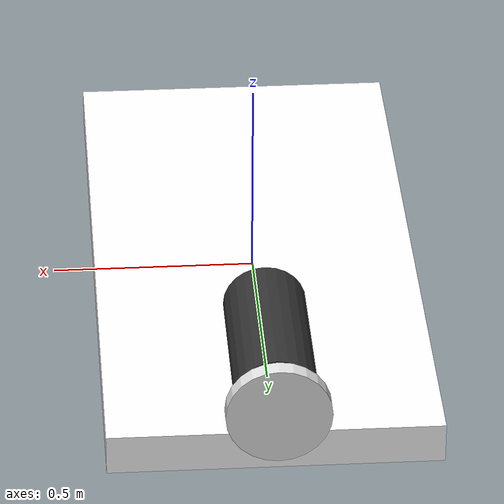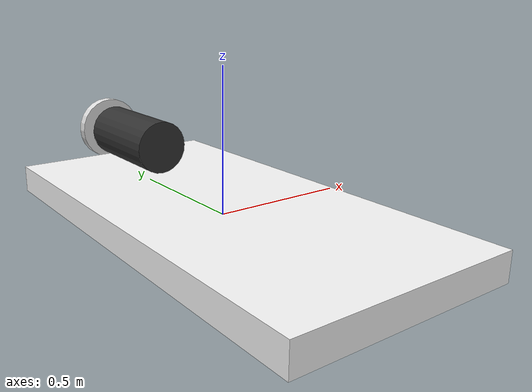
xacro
<?xml version="1.0"?>
<!--
  Copyright (C) 2024 Advanced Micro Devices, Inc.
  SPDX-License-Identifier: MIT
-->
<robot xmlns:xacro="http://www.ros.org/wiki/xacro"  name="foc_motor">

    <xacro:include filename="motor_kit.xacro" />
    <xacro:include filename="ros2_control.xacro" />

    <xacro:define_control
        name="foc_system"
        prefix=""
        bus_config="$(find kria_motor_control)/config/402_control/bus.yml"
        master_config="$(find kria_motor_control)/config/402_control/master.dcf"
        can_interface_name="can0"
        master_bin="" />

</robot>

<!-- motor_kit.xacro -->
<!--
  Copyright (C) 2024 Advanced Micro Devices, Inc.
  SPDX-License-Identifier: MIT
-->
<robot xmlns:xacro="http://www.ros.org/wiki/xacro">

    <link name="base_plate">
        <visual>
            <geometry>
                <box size="0.8 1.6 0.1"/>
            </geometry>
            <material name="White">
                <color rgba="1 1 1 1"/>
            </material>
        </visual>
        <collision>
            <geometry>
                <box size="0.8 1.6 0.1"/>
            </geometry>
            <material name="White">
                <color rgba="1 1 1 1"/>
            </material>
        </collision>
    </link>

    <joint name="motor_joint" type="fixed">
        <parent link="base_plate"/>
        <child link="motor"/>
        <origin xyz="0 0.6 0"/>
    </joint>

    <link name="motor">
        <visual>
            <geometry>
                <cylinder length="0.4" radius="0.1"/>
            </geometry>
            <origin rpy="1.57075 0 0" xyz="0 0 0.15"/>
            <material name="Black">
                <color rgba="0.2 0.2 0.2 1"/>
            </material>
        </visual>
        <collision>
            <geometry>
                <cylinder length="0.4" radius="0.1"/>
            </geometry>
            <origin rpy="1.57075 0 0" xyz="0 0 0.15"/>
            <material name="Black">
                <color rgba="0.2 0.2 0.2 1"/>
            </material>
        </collision>
    </link>

    <joint name="screw_joint" type="fixed">
        <parent link="motor"/>
        <child link="screw"/>
        <origin xyz="0 0.22 0"/>
    </joint>

    <link name="screw">
        <visual>
            <geometry>
                <cylinder length="0.04" radius="0.01"/>
            </geometry>
            <origin rpy="1.57075 0 0" xyz="0 0 0.15"/>
            <material name="Grey">
                <color rgba="0.9 0.9 0.9 1"/>
            </material>
        </visual>
        <collision>
            <geometry>
                <cylinder length="0.04" radius="0.01"/>
            </geometry>
            <origin rpy="1.57075 0 0" xyz="0 0 0.15"/>
            <material name="Grey">
                <color rgba="0.9 0.9 0.9 1"/>
            </material>
        </collision>
    </link>

    <joint name="wheel_joint" type="continuous">
        <parent link="screw"/>
        <child link="wheel"/>
        <origin xyz="0 0.04 0.15" rpy="${pi/2} 0 0" />
        <axis xyz="0 0 -1"/>
    </joint>

    <link name="wheel">
        <visual>
            <geometry>
                <cylinder length="0.04" radius="0.125"/>
            </geometry>
            <material name="Grey">
                <color rgba="0.9 0.9 0.9 1"/>
            </material>
        </visual>
        <collision>
            <geometry>
                <cylinder length="0.04" radius="0.125"/>
            </geometry>
            <material name="Grey">
                <color rgba="0.9 0.9 0.9 1"/>
            </material>
        </collision>
    </link>

</robot>
